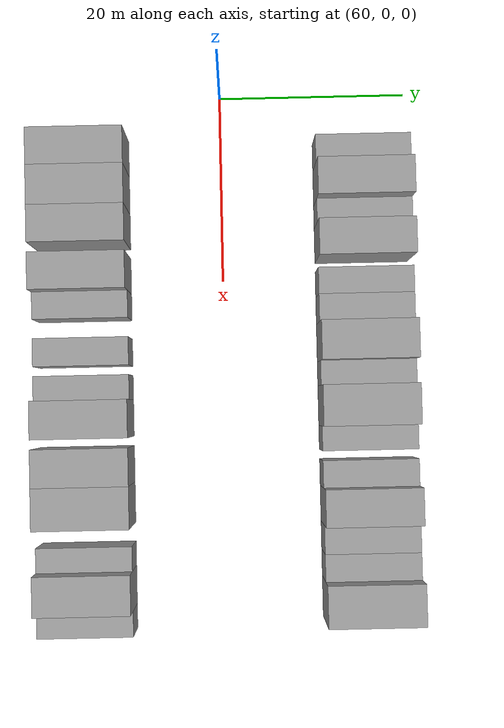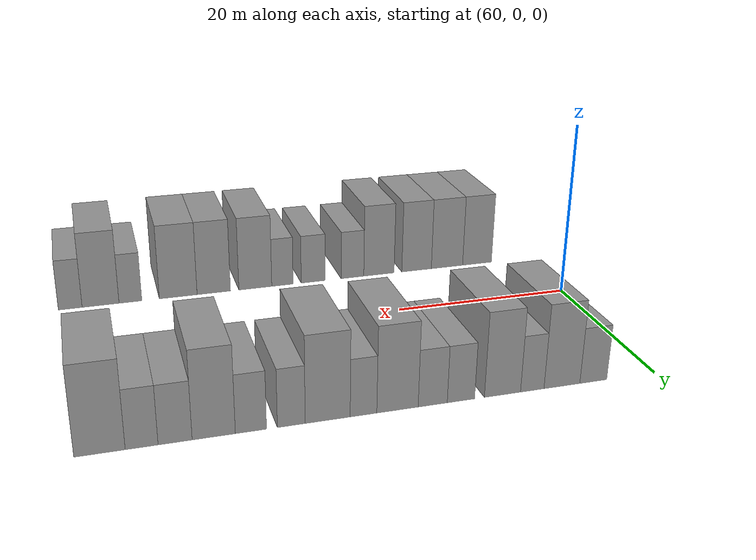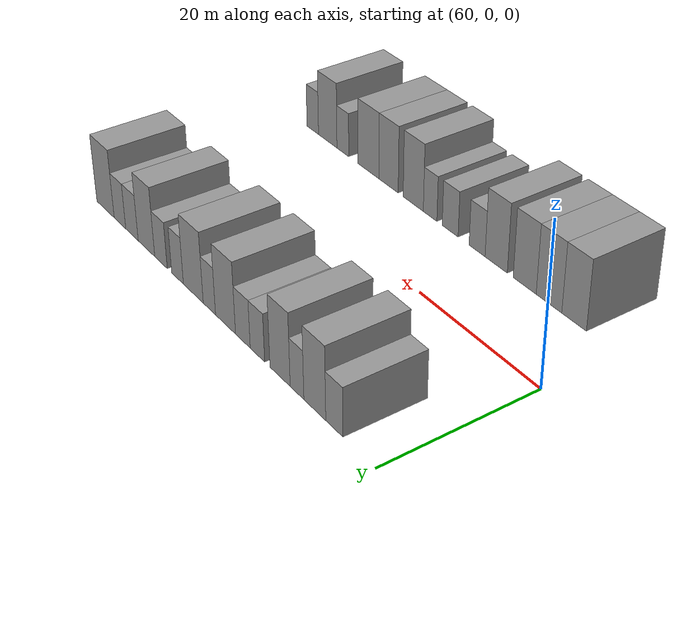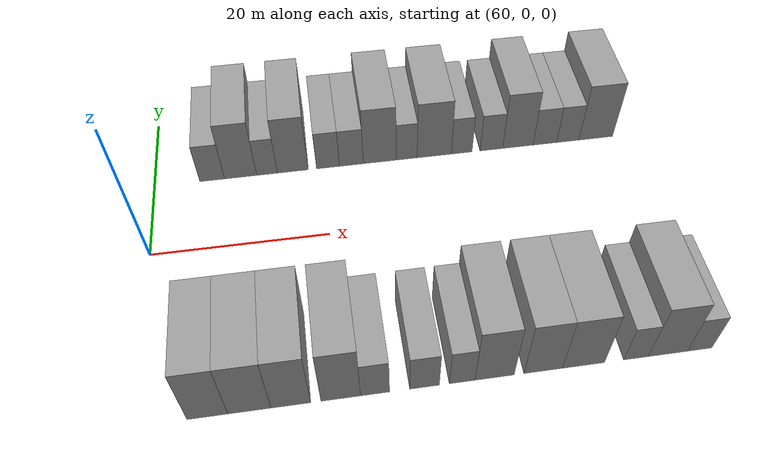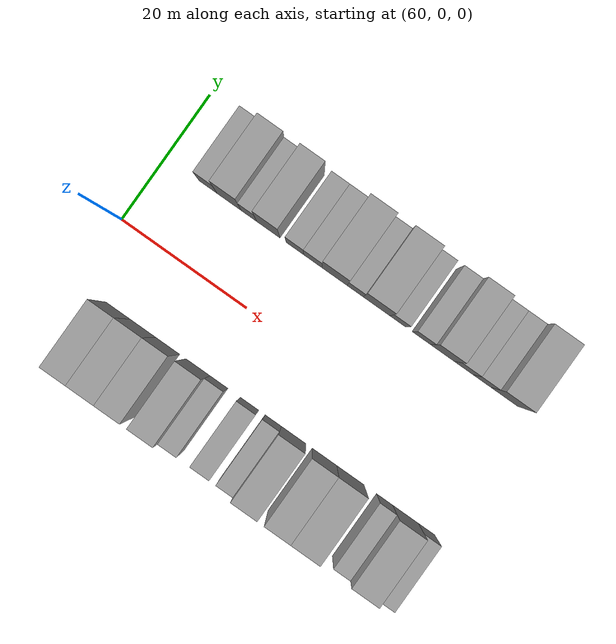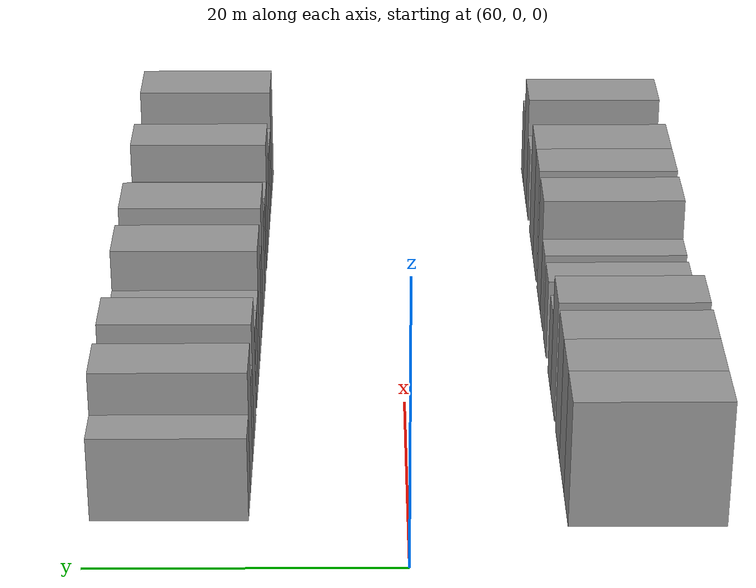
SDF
<sdf version="1.6">
 <world name="default">
  <model name="building_15">
   <static>1</static>
   <pose>66.7770 15.0000 0 0.000000 0.000000 1.570796</pose>
   <link name="link">
    <pose>0 0 3.00 0 0 0</pose>
    <collision name="collision"><geometry><box><size>10.0000 2.9155 6.0000</size></box></geometry></collision>
    <visual name="visual">
     <cast_shadows>0</cast_shadows>
     <geometry><box><size>10.0000 2.9155 6.0000</size></box></geometry>
     <material>
      <script>
       <uri>model://grey_wall/materials/scripts</uri>
       <uri>model://grey_wall/materials/textures</uri>
       <name>vrc/grey_wall</name>
      </script>
     </material>
    </visual>
   </link>
  </model>
  <model name="building_16">
   <static>1</static>
   <pose>70.1506 15.0000 0 0.000000 0.000000 1.570796</pose>
   <link name="link">
    <pose>0 0 4.50 0 0 0</pose>
    <collision name="collision"><geometry><box><size>10.0000 3.8317 9.0000</size></box></geometry></collision>
    <visual name="visual">
     <cast_shadows>0</cast_shadows>
     <geometry><box><size>10.0000 3.8317 9.0000</size></box></geometry>
     <material>
      <script>
       <uri>model://grey_wall/materials/scripts</uri>
       <uri>model://grey_wall/materials/textures</uri>
       <name>vrc/grey_wall</name>
      </script>
     </material>
    </visual>
   </link>
  </model>
  <model name="building_17">
   <static>1</static>
   <pose>73.3016 15.0000 0 0.000000 0.000000 1.570796</pose>
   <link name="link">
    <pose>0 0 3.00 0 0 0</pose>
    <collision name="collision"><geometry><box><size>10.0000 2.4702 6.0000</size></box></geometry></collision>
    <visual name="visual">
     <cast_shadows>0</cast_shadows>
     <geometry><box><size>10.0000 2.4702 6.0000</size></box></geometry>
     <material>
      <script>
       <uri>model://grey_wall/materials/scripts</uri>
       <uri>model://grey_wall/materials/textures</uri>
       <name>vrc/grey_wall</name>
      </script>
     </material>
    </visual>
   </link>
  </model>
  <model name="building_18">
   <static>1</static>
   <pose>76.4071 15.0000 0 0.000000 0.000000 1.570796</pose>
   <link name="link">
    <pose>0 0 4.50 0 0 0</pose>
    <collision name="collision"><geometry><box><size>10.0000 3.7410 9.0000</size></box></geometry></collision>
    <visual name="visual">
     <cast_shadows>0</cast_shadows>
     <geometry><box><size>10.0000 3.7410 9.0000</size></box></geometry>
     <material>
      <script>
       <uri>model://grey_wall/materials/scripts</uri>
       <uri>model://grey_wall/materials/textures</uri>
       <name>vrc/grey_wall</name>
      </script>
     </material>
    </visual>
   </link>
  </model>
  <model name="building_19">
   <static>1</static>
   <pose>80.6656 15.0000 0 0.000000 0.000000 1.570796</pose>
   <link name="link">
    <pose>0 0 3.00 0 0 0</pose>
    <collision name="collision"><geometry><box><size>10.0000 2.7760 6.0000</size></box></geometry></collision>
    <visual name="visual">
     <cast_shadows>0</cast_shadows>
     <geometry><box><size>10.0000 2.7760 6.0000</size></box></geometry>
     <material>
      <script>
       <uri>model://grey_wall/materials/scripts</uri>
       <uri>model://grey_wall/materials/textures</uri>
       <name>vrc/grey_wall</name>
      </script>
     </material>
    </visual>
   </link>
  </model>
  <model name="building_20">
   <static>1</static>
   <pose>83.5055 15.0000 0 0.000000 0.000000 1.570796</pose>
   <link name="link">
    <pose>0 0 3.00 0 0 0</pose>
    <collision name="collision"><geometry><box><size>10.0000 2.9038 6.0000</size></box></geometry></collision>
    <visual name="visual">
     <cast_shadows>0</cast_shadows>
     <geometry><box><size>10.0000 2.9038 6.0000</size></box></geometry>
     <material>
      <script>
       <uri>model://grey_wall/materials/scripts</uri>
       <uri>model://grey_wall/materials/textures</uri>
       <name>vrc/grey_wall</name>
      </script>
     </material>
    </visual>
   </link>
  </model>
  <model name="building_21">
   <static>1</static>
   <pose>86.9885 15.0000 0 0.000000 0.000000 1.570796</pose>
   <link name="link">
    <pose>0 0 4.50 0 0 0</pose>
    <collision name="collision"><geometry><box><size>10.0000 4.0622 9.0000</size></box></geometry></collision>
    <visual name="visual">
     <cast_shadows>0</cast_shadows>
     <geometry><box><size>10.0000 4.0622 9.0000</size></box></geometry>
     <material>
      <script>
       <uri>model://grey_wall/materials/scripts</uri>
       <uri>model://grey_wall/materials/textures</uri>
       <name>vrc/grey_wall</name>
      </script>
     </material>
    </visual>
   </link>
  </model>
  <model name="building_22">
   <static>1</static>
   <pose>90.3040 15.0000 0 0.000000 0.000000 1.570796</pose>
   <link name="link">
    <pose>0 0 3.00 0 0 0</pose>
    <collision name="collision"><geometry><box><size>10.0000 2.5687 6.0000</size></box></geometry></collision>
    <visual name="visual">
     <cast_shadows>0</cast_shadows>
     <geometry><box><size>10.0000 2.5687 6.0000</size></box></geometry>
     <material>
      <script>
       <uri>model://grey_wall/materials/scripts</uri>
       <uri>model://grey_wall/materials/textures</uri>
       <name>vrc/grey_wall</name>
      </script>
     </material>
    </visual>
   </link>
  </model>
  <model name="building_23">
   <static>1</static>
   <pose>93.7211 15.0000 0 0.000000 0.000000 1.570796</pose>
   <link name="link">
    <pose>0 0 4.50 0 0 0</pose>
    <collision name="collision"><geometry><box><size>10.0000 4.2655 9.0000</size></box></geometry></collision>
    <visual name="visual">
     <cast_shadows>0</cast_shadows>
     <geometry><box><size>10.0000 4.2655 9.0000</size></box></geometry>
     <material>
      <script>
       <uri>model://grey_wall/materials/scripts</uri>
       <uri>model://grey_wall/materials/textures</uri>
       <name>vrc/grey_wall</name>
      </script>
     </material>
    </visual>
   </link>
  </model>
  <model name="building_24">
   <static>1</static>
   <pose>97.1481 15.0000 0 0.000000 0.000000 1.570796</pose>
   <link name="link">
    <pose>0 0 3.00 0 0 0</pose>
    <collision name="collision"><geometry><box><size>10.0000 2.5886 6.0000</size></box></geometry></collision>
    <visual name="visual">
     <cast_shadows>0</cast_shadows>
     <geometry><box><size>10.0000 2.5886 6.0000</size></box></geometry>
     <material>
      <script>
       <uri>model://grey_wall/materials/scripts</uri>
       <uri>model://grey_wall/materials/textures</uri>
       <name>vrc/grey_wall</name>
      </script>
     </material>
    </visual>
   </link>
  </model>
  <model name="building_25">
   <static>1</static>
   <pose>100.8649 15.0000 0 0.000000 0.000000 1.570796</pose>
   <link name="link">
    <pose>0 0 3.00 0 0 0</pose>
    <collision name="collision"><geometry><box><size>10.0000 2.8450 6.0000</size></box></geometry></collision>
    <visual name="visual">
     <cast_shadows>0</cast_shadows>
     <geometry><box><size>10.0000 2.8450 6.0000</size></box></geometry>
     <material>
      <script>
       <uri>model://grey_wall/materials/scripts</uri>
       <uri>model://grey_wall/materials/textures</uri>
       <name>vrc/grey_wall</name>
      </script>
     </material>
    </visual>
   </link>
  </model>
  <model name="building_26">
   <static>1</static>
   <pose>104.2250 15.0000 0 0.000000 0.000000 1.570796</pose>
   <link name="link">
    <pose>0 0 4.50 0 0 0</pose>
    <collision name="collision"><geometry><box><size>10.0000 3.8752 9.0000</size></box></geometry></collision>
    <visual name="visual">
     <cast_shadows>0</cast_shadows>
     <geometry><box><size>10.0000 3.8752 9.0000</size></box></geometry>
     <material>
      <script>
       <uri>model://grey_wall/materials/scripts</uri>
       <uri>model://grey_wall/materials/textures</uri>
       <name>vrc/grey_wall</name>
      </script>
     </material>
    </visual>
   </link>
  </model>
  <model name="building_27">
   <static>1</static>
   <pose>107.6613 15.0000 0 0.000000 0.000000 1.570796</pose>
   <link name="link">
    <pose>0 0 3.00 0 0 0</pose>
    <collision name="collision"><geometry><box><size>10.0000 2.9974 6.0000</size></box></geometry></collision>
    <visual name="visual">
     <cast_shadows>0</cast_shadows>
     <geometry><box><size>10.0000 2.9974 6.0000</size></box></geometry>
     <material>
      <script>
       <uri>model://grey_wall/materials/scripts</uri>
       <uri>model://grey_wall/materials/textures</uri>
       <name>vrc/grey_wall</name>
      </script>
     </material>
    </visual>
   </link>
  </model>
  <model name="building_28">
   <static>1</static>
   <pose>110.5838 15.0000 0 0.000000 0.000000 1.570796</pose>
   <link name="link">
    <pose>0 0 3.00 0 0 0</pose>
    <collision name="collision"><geometry><box><size>10.0000 2.8476 6.0000</size></box></geometry></collision>
    <visual name="visual">
     <cast_shadows>0</cast_shadows>
     <geometry><box><size>10.0000 2.8476 6.0000</size></box></geometry>
     <material>
      <script>
       <uri>model://grey_wall/materials/scripts</uri>
       <uri>model://grey_wall/materials/textures</uri>
       <name>vrc/grey_wall</name>
      </script>
     </material>
    </visual>
   </link>
  </model>
  <model name="building_29">
   <static>1</static>
   <pose>114.1921 15.0000 0 0.000000 0.000000 1.570796</pose>
   <link name="link">
    <pose>0 0 4.50 0 0 0</pose>
    <collision name="collision"><geometry><box><size>10.0000 4.3690 9.0000</size></box></geometry></collision>
    <visual name="visual">
     <cast_shadows>0</cast_shadows>
     <geometry><box><size>10.0000 4.3690 9.0000</size></box></geometry>
     <material>
      <script>
       <uri>model://grey_wall/materials/scripts</uri>
       <uri>model://grey_wall/materials/textures</uri>
       <name>vrc/grey_wall</name>
      </script>
     </material>
    </visual>
   </link>
  </model>
  <model name="building_70">
   <static>1</static>
   <pose>66.4581 -15.0000 0 0.000000 0.000000 1.570796</pose>
   <link name="link">
    <pose>0 0 4.50 0 0 0</pose>
    <collision name="collision"><geometry><box><size>10.0000 3.8610 9.0000</size></box></geometry></collision>
    <visual name="visual">
     <cast_shadows>0</cast_shadows>
     <geometry><box><size>10.0000 3.8610 9.0000</size></box></geometry>
     <material>
      <script>
       <uri>model://grey_wall/materials/scripts</uri>
       <uri>model://grey_wall/materials/textures</uri>
       <name>vrc/grey_wall</name>
      </script>
     </material>
    </visual>
   </link>
  </model>
  <model name="building_71">
   <static>1</static>
   <pose>70.4553 -15.0000 0 0.000000 0.000000 1.570796</pose>
   <link name="link">
    <pose>0 0 4.50 0 0 0</pose>
    <collision name="collision"><geometry><box><size>10.0000 4.1333 9.0000</size></box></geometry></collision>
    <visual name="visual">
     <cast_shadows>0</cast_shadows>
     <geometry><box><size>10.0000 4.1333 9.0000</size></box></geometry>
     <material>
      <script>
       <uri>model://grey_wall/materials/scripts</uri>
       <uri>model://grey_wall/materials/textures</uri>
       <name>vrc/grey_wall</name>
      </script>
     </material>
    </visual>
   </link>
  </model>
  <model name="building_72">
   <static>1</static>
   <pose>74.4442 -15.0000 0 0.000000 0.000000 1.570796</pose>
   <link name="link">
    <pose>0 0 4.50 0 0 0</pose>
    <collision name="collision"><geometry><box><size>10.0000 3.8445 9.0000</size></box></geometry></collision>
    <visual name="visual">
     <cast_shadows>0</cast_shadows>
     <geometry><box><size>10.0000 3.8445 9.0000</size></box></geometry>
     <material>
      <script>
       <uri>model://grey_wall/materials/scripts</uri>
       <uri>model://grey_wall/materials/textures</uri>
       <name>vrc/grey_wall</name>
      </script>
     </material>
    </visual>
   </link>
  </model>
  <model name="building_73">
   <static>1</static>
   <pose>79.3001 -15.0000 0 0.000000 0.000000 1.570796</pose>
   <link name="link">
    <pose>0 0 4.50 0 0 0</pose>
    <collision name="collision"><geometry><box><size>10.0000 3.8674 9.0000</size></box></geometry></collision>
    <visual name="visual">
     <cast_shadows>0</cast_shadows>
     <geometry><box><size>10.0000 3.8674 9.0000</size></box></geometry>
     <material>
      <script>
       <uri>model://grey_wall/materials/scripts</uri>
       <uri>model://grey_wall/materials/textures</uri>
       <name>vrc/grey_wall</name>
      </script>
     </material>
    </visual>
   </link>
  </model>
  <model name="building_74">
   <static>1</static>
   <pose>82.6624 -15.0000 0 0.000000 0.000000 1.570796</pose>
   <link name="link">
    <pose>0 0 3.00 0 0 0</pose>
    <collision name="collision"><geometry><box><size>10.0000 2.8571 6.0000</size></box></geometry></collision>
    <visual name="visual">
     <cast_shadows>0</cast_shadows>
     <geometry><box><size>10.0000 2.8571 6.0000</size></box></geometry>
     <material>
      <script>
       <uri>model://grey_wall/materials/scripts</uri>
       <uri>model://grey_wall/materials/textures</uri>
       <name>vrc/grey_wall</name>
      </script>
     </material>
    </visual>
   </link>
  </model>
  <model name="building_75">
   <static>1</static>
   <pose>87.5683 -15.0000 0 0.000000 0.000000 1.570796</pose>
   <link name="link">
    <pose>0 0 3.00 0 0 0</pose>
    <collision name="collision"><geometry><box><size>10.0000 2.9547 6.0000</size></box></geometry></collision>
    <visual name="visual">
     <cast_shadows>0</cast_shadows>
     <geometry><box><size>10.0000 2.9547 6.0000</size></box></geometry>
     <material>
      <script>
       <uri>model://grey_wall/materials/scripts</uri>
       <uri>model://grey_wall/materials/textures</uri>
       <name>vrc/grey_wall</name>
      </script>
     </material>
    </visual>
   </link>
  </model>
  <model name="building_76">
   <static>1</static>
   <pose>91.3424 -15.0000 0 0.000000 0.000000 1.570796</pose>
   <link name="link">
    <pose>0 0 3.00 0 0 0</pose>
    <collision name="collision"><geometry><box><size>10.0000 2.5934 6.0000</size></box></geometry></collision>
    <visual name="visual">
     <cast_shadows>0</cast_shadows>
     <geometry><box><size>10.0000 2.5934 6.0000</size></box></geometry>
     <material>
      <script>
       <uri>model://grey_wall/materials/scripts</uri>
       <uri>model://grey_wall/materials/textures</uri>
       <name>vrc/grey_wall</name>
      </script>
     </material>
    </visual>
   </link>
  </model>
  <model name="building_77">
   <static>1</static>
   <pose>94.6153 -15.0000 0 0.000000 0.000000 1.570796</pose>
   <link name="link">
    <pose>0 0 4.50 0 0 0</pose>
    <collision name="collision"><geometry><box><size>10.0000 3.9525 9.0000</size></box></geometry></collision>
    <visual name="visual">
     <cast_shadows>0</cast_shadows>
     <geometry><box><size>10.0000 3.9525 9.0000</size></box></geometry>
     <material>
      <script>
       <uri>model://grey_wall/materials/scripts</uri>
       <uri>model://grey_wall/materials/textures</uri>
       <name>vrc/grey_wall</name>
      </script>
     </material>
    </visual>
   </link>
  </model>
  <model name="building_78">
   <static>1</static>
   <pose>99.5565 -15.0000 0 0.000000 0.000000 1.570796</pose>
   <link name="link">
    <pose>0 0 4.50 0 0 0</pose>
    <collision name="collision"><geometry><box><size>10.0000 3.9299 9.0000</size></box></geometry></collision>
    <visual name="visual">
     <cast_shadows>0</cast_shadows>
     <geometry><box><size>10.0000 3.9299 9.0000</size></box></geometry>
     <material>
      <script>
       <uri>model://grey_wall/materials/scripts</uri>
       <uri>model://grey_wall/materials/textures</uri>
       <name>vrc/grey_wall</name>
      </script>
     </material>
    </visual>
   </link>
  </model>
  <model name="building_79">
   <static>1</static>
   <pose>103.7073 -15.0000 0 0.000000 0.000000 1.570796</pose>
   <link name="link">
    <pose>0 0 4.50 0 0 0</pose>
    <collision name="collision"><geometry><box><size>10.0000 4.3716 9.0000</size></box></geometry></collision>
    <visual name="visual">
     <cast_shadows>0</cast_shadows>
     <geometry><box><size>10.0000 4.3716 9.0000</size></box></geometry>
     <material>
      <script>
       <uri>model://grey_wall/materials/scripts</uri>
       <uri>model://grey_wall/materials/textures</uri>
       <name>vrc/grey_wall</name>
      </script>
     </material>
    </visual>
   </link>
  </model>
  <model name="building_80">
   <static>1</static>
   <pose>109.1833 -15.0000 0 0.000000 0.000000 1.570796</pose>
   <link name="link">
    <pose>0 0 3.00 0 0 0</pose>
    <collision name="collision"><geometry><box><size>10.0000 2.5805 6.0000</size></box></geometry></collision>
    <visual name="visual">
     <cast_shadows>0</cast_shadows>
     <geometry><box><size>10.0000 2.5805 6.0000</size></box></geometry>
     <material>
      <script>
       <uri>model://grey_wall/materials/scripts</uri>
       <uri>model://grey_wall/materials/textures</uri>
       <name>vrc/grey_wall</name>
      </script>
     </material>
    </visual>
   </link>
  </model>
  <model name="building_81">
   <static>1</static>
   <pose>112.5316 -15.0000 0 0.000000 0.000000 1.570796</pose>
   <link name="link">
    <pose>0 0 4.50 0 0 0</pose>
    <collision name="collision"><geometry><box><size>10.0000 4.1161 9.0000</size></box></geometry></collision>
    <visual name="visual">
     <cast_shadows>0</cast_shadows>
     <geometry><box><size>10.0000 4.1161 9.0000</size></box></geometry>
     <material>
      <script>
       <uri>model://grey_wall/materials/scripts</uri>
       <uri>model://grey_wall/materials/textures</uri>
       <name>vrc/grey_wall</name>
      </script>
     </material>
    </visual>
   </link>
  </model>
  <model name="building_82">
   <static>1</static>
   <pose>115.8994 -15.0000 0 0.000000 0.000000 1.570796</pose>
   <link name="link">
    <pose>0 0 3.00 0 0 0</pose>
    <collision name="collision"><geometry><box><size>10.0000 2.6196 6.0000</size></box></geometry></collision>
    <visual name="visual">
     <cast_shadows>0</cast_shadows>
     <geometry><box><size>10.0000 2.6196 6.0000</size></box></geometry>
     <material>
      <script>
       <uri>model://grey_wall/materials/scripts</uri>
       <uri>model://grey_wall/materials/textures</uri>
       <name>vrc/grey_wall</name>
      </script>
     </material>
    </visual>
   </link>
  </model>
 </world>
</sdf>
